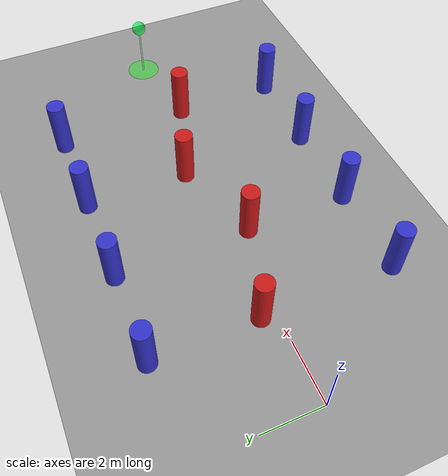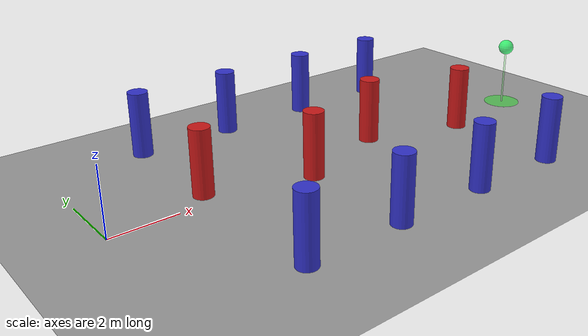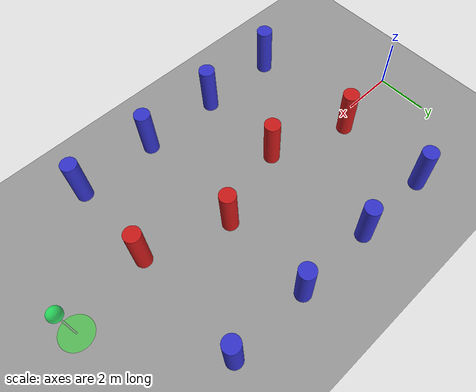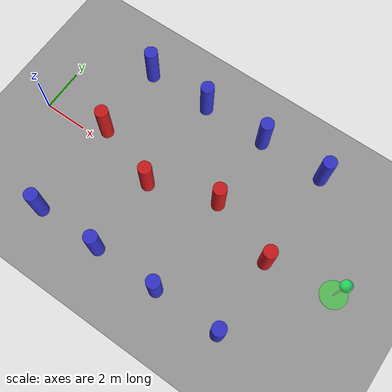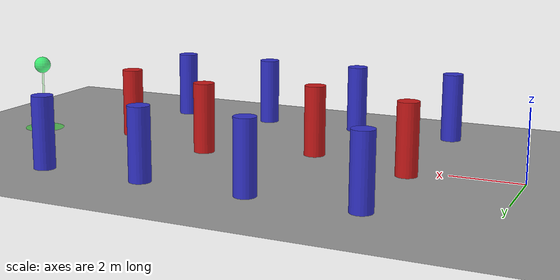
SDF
<?xml version="1.0" ?>
<sdf version="1.8">
  <world name="obstacle_world">
    <physics name="1ms" type="ignored">
      <max_step_size>0.001</max_step_size>
      <real_time_factor>1.0</real_time_factor>
    </physics>

    <plugin filename="gz-sim-physics-system" name="gz::sim::systems::Physics"/>
    <plugin filename="gz-sim-scene-broadcaster-system" name="gz::sim::systems::SceneBroadcaster"/>
    <plugin filename="gz-sim-user-commands-system" name="gz::sim::systems::UserCommands"/>
    <plugin filename="gz-sim-sensors-system" name="gz::sim::systems::Sensors"/>

    <light type="directional" name="sun">
      <cast_shadows>true</cast_shadows>
      <pose>0 0 10 0 0 0</pose>
      <diffuse>0.8 0.8 0.8 1</diffuse>
      <specular>0.2 0.2 0.2 1</specular>
      <direction>-0.5 0.1 -0.9</direction>
    </light>

    <model name="ground_plane">
      <static>true</static>
      <link name="link">
        <collision name="collision">
          <geometry>
            <plane>
              <normal>0 0 1</normal>
              <size>100 100</size>
            </plane>
          </geometry>
        </collision>
        <visual name="visual">
          <geometry>
            <plane>
              <normal>0 0 1</normal>
              <size>100 100</size>
            </plane>
          </geometry>
          <material>
            <ambient>0.6 0.6 0.6 1</ambient>
            <diffuse>0.6 0.6 0.6 1</diffuse>
          </material>
        </visual>
      </link>
    </model>

    <!-- 4 red center slalom cylinders -->
    <model name="cyl_center_1">
      <pose>3.0 0.5 1.0 0 0 0</pose>
      <static>true</static>
      <link name="link">
        <collision name="collision">
          <geometry><cylinder><radius>0.3</radius><length>2.0</length></cylinder></geometry>
        </collision>
        <visual name="visual">
          <geometry><cylinder><radius>0.3</radius><length>2.0</length></cylinder></geometry>
          <material><ambient>0.8 0.1 0.1 1</ambient><diffuse>0.8 0.1 0.1 1</diffuse></material>
        </visual>
      </link>
    </model>

    <model name="cyl_center_2">
      <pose>6.0 -0.5 1.0 0 0 0</pose>
      <static>true</static>
      <link name="link">
        <collision name="collision">
          <geometry><cylinder><radius>0.3</radius><length>2.0</length></cylinder></geometry>
        </collision>
        <visual name="visual">
          <geometry><cylinder><radius>0.3</radius><length>2.0</length></cylinder></geometry>
          <material><ambient>0.8 0.1 0.1 1</ambient><diffuse>0.8 0.1 0.1 1</diffuse></material>
        </visual>
      </link>
    </model>

    <model name="cyl_center_3">
      <pose>9.0 0.5 1.0 0 0 0</pose>
      <static>true</static>
      <link name="link">
        <collision name="collision">
          <geometry><cylinder><radius>0.3</radius><length>2.0</length></cylinder></geometry>
        </collision>
        <visual name="visual">
          <geometry><cylinder><radius>0.3</radius><length>2.0</length></cylinder></geometry>
          <material><ambient>0.8 0.1 0.1 1</ambient><diffuse>0.8 0.1 0.1 1</diffuse></material>
        </visual>
      </link>
    </model>

    <model name="cyl_center_4">
      <pose>12.0 -0.5 1.0 0 0 0</pose>
      <static>true</static>
      <link name="link">
        <collision name="collision">
          <geometry><cylinder><radius>0.3</radius><length>2.0</length></cylinder></geometry>
        </collision>
        <visual name="visual">
          <geometry><cylinder><radius>0.3</radius><length>2.0</length></cylinder></geometry>
          <material><ambient>0.8 0.1 0.1 1</ambient><diffuse>0.8 0.1 0.1 1</diffuse></material>
        </visual>
      </link>
    </model>

    <!-- 8 blue guardrail cylinders (4 left + 4 right) -->
    <model name="cyl_wall_1_L"><pose>3.0 4.0 1.0 0 0 0</pose><static>true</static><link name="link"><collision name="collision"><geometry><cylinder><radius>0.3</radius><length>2.0</length></cylinder></geometry></collision><visual name="visual"><geometry><cylinder><radius>0.3</radius><length>2.0</length></cylinder></geometry><material><ambient>0.2 0.2 0.8 1</ambient><diffuse>0.2 0.2 0.8 1</diffuse></material></visual></link></model>
    <model name="cyl_wall_2_L"><pose>6.0 4.0 1.0 0 0 0</pose><static>true</static><link name="link"><collision name="collision"><geometry><cylinder><radius>0.3</radius><length>2.0</length></cylinder></geometry></collision><visual name="visual"><geometry><cylinder><radius>0.3</radius><length>2.0</length></cylinder></geometry><material><ambient>0.2 0.2 0.8 1</ambient><diffuse>0.2 0.2 0.8 1</diffuse></material></visual></link></model>
    <model name="cyl_wall_3_L"><pose>9.0 4.0 1.0 0 0 0</pose><static>true</static><link name="link"><collision name="collision"><geometry><cylinder><radius>0.3</radius><length>2.0</length></cylinder></geometry></collision><visual name="visual"><geometry><cylinder><radius>0.3</radius><length>2.0</length></cylinder></geometry><material><ambient>0.2 0.2 0.8 1</ambient><diffuse>0.2 0.2 0.8 1</diffuse></material></visual></link></model>
    <model name="cyl_wall_4_L"><pose>12.0 4.0 1.0 0 0 0</pose><static>true</static><link name="link"><collision name="collision"><geometry><cylinder><radius>0.3</radius><length>2.0</length></cylinder></geometry></collision><visual name="visual"><geometry><cylinder><radius>0.3</radius><length>2.0</length></cylinder></geometry><material><ambient>0.2 0.2 0.8 1</ambient><diffuse>0.2 0.2 0.8 1</diffuse></material></visual></link></model>

    <model name="cyl_wall_1_R"><pose>3.0 -4.0 1.0 0 0 0</pose><static>true</static><link name="link"><collision name="collision"><geometry><cylinder><radius>0.3</radius><length>2.0</length></cylinder></geometry></collision><visual name="visual"><geometry><cylinder><radius>0.3</radius><length>2.0</length></cylinder></geometry><material><ambient>0.2 0.2 0.8 1</ambient><diffuse>0.2 0.2 0.8 1</diffuse></material></visual></link></model>
    <model name="cyl_wall_2_R"><pose>6.0 -4.0 1.0 0 0 0</pose><static>true</static><link name="link"><collision name="collision"><geometry><cylinder><radius>0.3</radius><length>2.0</length></cylinder></geometry></collision><visual name="visual"><geometry><cylinder><radius>0.3</radius><length>2.0</length></cylinder></geometry><material><ambient>0.2 0.2 0.8 1</ambient><diffuse>0.2 0.2 0.8 1</diffuse></material></visual></link></model>
    <model name="cyl_wall_3_R"><pose>9.0 -4.0 1.0 0 0 0</pose><static>true</static><link name="link"><collision name="collision"><geometry><cylinder><radius>0.3</radius><length>2.0</length></cylinder></geometry></collision><visual name="visual"><geometry><cylinder><radius>0.3</radius><length>2.0</length></cylinder></geometry><material><ambient>0.2 0.2 0.8 1</ambient><diffuse>0.2 0.2 0.8 1</diffuse></material></visual></link></model>
    <model name="cyl_wall_4_R"><pose>12.0 -4.0 1.0 0 0 0</pose><static>true</static><link name="link"><collision name="collision"><geometry><cylinder><radius>0.3</radius><length>2.0</length></cylinder></geometry></collision><visual name="visual"><geometry><cylinder><radius>0.3</radius><length>2.0</length></cylinder></geometry><material><ambient>0.2 0.2 0.8 1</ambient><diffuse>0.2 0.2 0.8 1</diffuse></material></visual></link></model>

    <!-- Visual target marker at x=15 -->
    <model name="visual_target_beacon">
      <static>true</static>
      <pose>15.0 0.0 0.01 0 0 0</pose>
      <link name="target_link">
        <visual name="ground_pad">
          <geometry>
            <cylinder>
              <radius>0.6</radius>
              <length>0.01</length>
            </cylinder>
          </geometry>
          <material>
            <ambient>0.0 1.0 0.0 0.4</ambient>
            <diffuse>0.0 1.0 0.0 0.4</diffuse>
            <emissive>0.0 0.6 0.0 1.0</emissive>
          </material>
        </visual>
        <visual name="vertical_guide_pillar">
          <pose>0 0 1.0 0 0 0</pose>
          <geometry>
            <cylinder>
              <radius>0.03</radius>
              <length>2.0</length>
            </cylinder>
          </geometry>
          <material>
            <ambient>0.0 1.0 0.0 0.15</ambient>
            <diffuse>0.0 1.0 0.0 0.15</diffuse>
            <emissive>0.0 0.3 0.0 1.0</emissive>
          </material>
        </visual>
        <visual name="floating_target_bubble">
          <pose>0 0 2.0 0 0 0</pose>
          <geometry>
            <sphere>
              <radius>0.25</radius>
            </sphere>
          </geometry>
          <material>
            <ambient>0.0 1.0 0.3 0.7</ambient>
            <diffuse>0.0 1.0 0.3 0.7</diffuse>
            <emissive>0.0 0.8 0.2 1.0</emissive>
          </material>
        </visual>
      </link>
    </model>

  </world>
</sdf>
